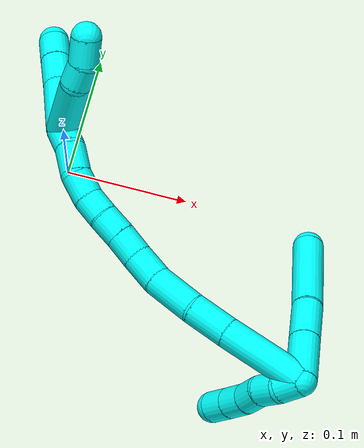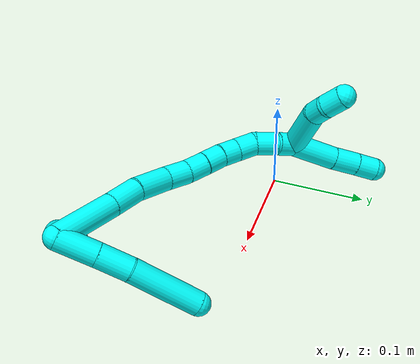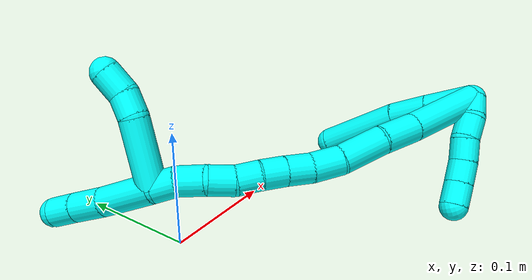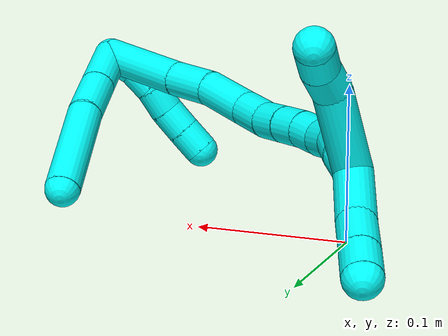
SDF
<sdf version="1.7">
 <world name="default">
  <model name="3">
   <static>0</static>
   <link name="3">
    <collision name="collision-cylinder-e_1_2_8">
     <pose>0.002387 0.000408 -0.020355 -3.12157 0.116737 -2.80226</pose>
     <geometry><cylinder><radius>0.0125</radius><length>0.040996</length></cylinder></geometry>
     <surface>
      <friction><ode><mu>1.16</mu><mu2>1.16</mu2><slip1>0</slip1><slip2>0</slip2></ode></friction>
      <contact><ode><kp>1e+06</kp><kd>1</kd><max_vel>0</max_vel><min_depth>0.001</min_depth></ode></contact>
     </surface>
    </collision>
    <visual name="visual-cylinder-e_1_2_8">
     <pose>0.002387 0.000408 -0.020355 -3.12157 0.116737 -2.80226</pose>
     <geometry><cylinder><radius>0.0125</radius><length>0.040996</length></cylinder></geometry>
     <material><ambient>0.003922 1 0.996078 1</ambient></material>
    </visual>
    <collision name="collision-cylinder-e_2_8_9">
     <pose>0.006902 0.000778 -0.057777 3.13942 0.123992 3.10657</pose>
     <geometry><cylinder><radius>0.0125</radius><length>0.034399</length></cylinder></geometry>
     <surface>
      <friction><ode><mu>1.16</mu><mu2>1.16</mu2><slip1>0</slip1><slip2>0</slip2></ode></friction>
      <contact><ode><kp>1e+06</kp><kd>1</kd><max_vel>0</max_vel><min_depth>0.001</min_depth></ode></contact>
     </surface>
    </collision>
    <visual name="visual-cylinder-e_2_8_9">
     <pose>0.006902 0.000778 -0.057777 3.13942 0.123992 3.10657</pose>
     <geometry><cylinder><radius>0.0125</radius><length>0.034399</length></cylinder></geometry>
     <material><ambient>0.003922 1 0.996078 1</ambient></material>
    </visual>
    <collision name="collision-cylinder-e_3_9_6">
     <pose>0.012011 -0.003843 -0.111743 3.01801 0.080022 1.14859</pose>
     <geometry><cylinder><radius>0.0125</radius><length>0.074605</length></cylinder></geometry>
     <surface>
      <friction><ode><mu>1.16</mu><mu2>1.16</mu2><slip1>0</slip1><slip2>0</slip2></ode></friction>
      <contact><ode><kp>1e+06</kp><kd>1</kd><max_vel>0</max_vel><min_depth>0.001</min_depth></ode></contact>
     </surface>
    </collision>
    <visual name="visual-cylinder-e_3_9_6">
     <pose>0.012011 -0.003843 -0.111743 3.01801 0.080022 1.14859</pose>
     <geometry><cylinder><radius>0.0125</radius><length>0.074605</length></cylinder></geometry>
     <material><ambient>0.003922 1 0.996078 1</ambient></material>
    </visual>
    <collision name="collision-cylinder-e_1_2_10">
     <pose>-0.007925 -0.005985 -0.001174 1.76444 -0.914851 -1.07812</pose>
     <geometry><cylinder><radius>0.0125</radius><length>0.02</length></cylinder></geometry>
     <surface>
      <friction><ode><mu>1.16</mu><mu2>1.16</mu2><slip1>0</slip1><slip2>0</slip2></ode></friction>
      <contact><ode><kp>1e+06</kp><kd>1</kd><max_vel>0</max_vel><min_depth>0.001</min_depth></ode></contact>
     </surface>
    </collision>
    <visual name="visual-cylinder-e_1_2_10">
     <pose>-0.007925 -0.005985 -0.001174 1.76444 -0.914851 -1.07812</pose>
     <geometry><cylinder><radius>0.0125</radius><length>0.02</length></cylinder></geometry>
     <material><ambient>0.003922 1 0.996078 1</ambient></material>
    </visual>
    <collision name="collision-cylinder-e_2_10_11">
     <pose>-0.022371 -0.018484 -0.006227 2.10795 -0.710383 -1.15644</pose>
     <geometry><cylinder><radius>0.0125</radius><length>0.02</length></cylinder></geometry>
     <surface>
      <friction><ode><mu>1.16</mu><mu2>1.16</mu2><slip1>0</slip1><slip2>0</slip2></ode></friction>
      <contact><ode><kp>1e+06</kp><kd>1</kd><max_vel>0</max_vel><min_depth>0.001</min_depth></ode></contact>
     </surface>
    </collision>
    <visual name="visual-cylinder-e_2_10_11">
     <pose>-0.022371 -0.018484 -0.006227 2.10795 -0.710383 -1.15644</pose>
     <geometry><cylinder><radius>0.0125</radius><length>0.02</length></cylinder></geometry>
     <material><ambient>0.003922 1 0.996078 1</ambient></material>
    </visual>
    <collision name="collision-cylinder-e_3_11_12">
     <pose>-0.033545 -0.033371 -0.012974 1.90081 -0.484032 -0.665311</pose>
     <geometry><cylinder><radius>0.0125</radius><length>0.02</length></cylinder></geometry>
     <surface>
      <friction><ode><mu>1.16</mu><mu2>1.16</mu2><slip1>0</slip1><slip2>0</slip2></ode></friction>
      <contact><ode><kp>1e+06</kp><kd>1</kd><max_vel>0</max_vel><min_depth>0.001</min_depth></ode></contact>
     </surface>
    </collision>
    <visual name="visual-cylinder-e_3_11_12">
     <pose>-0.033545 -0.033371 -0.012974 1.90081 -0.484032 -0.665311</pose>
     <geometry><cylinder><radius>0.0125</radius><length>0.02</length></cylinder></geometry>
     <material><ambient>0.003922 1 0.996078 1</ambient></material>
    </visual>
    <collision name="collision-cylinder-e_4_12_13">
     <pose>-0.044187 -0.04893 -0.01938 2.02823 -0.642008 -0.981395</pose>
     <geometry><cylinder><radius>0.0125</radius><length>0.02</length></cylinder></geometry>
     <surface>
      <friction><ode><mu>1.16</mu><mu2>1.16</mu2><slip1>0</slip1><slip2>0</slip2></ode></friction>
      <contact><ode><kp>1e+06</kp><kd>1</kd><max_vel>0</max_vel><min_depth>0.001</min_depth></ode></contact>
     </surface>
    </collision>
    <visual name="visual-cylinder-e_4_12_13">
     <pose>-0.044187 -0.04893 -0.01938 2.02823 -0.642008 -0.981395</pose>
     <geometry><cylinder><radius>0.0125</radius><length>0.02</length></cylinder></geometry>
     <material><ambient>0.003922 1 0.996078 1</ambient></material>
    </visual>
    <collision name="collision-cylinder-e_5_13_5">
     <pose>-0.056344 -0.063124 -0.026497 2.04305 -0.664788 -1.027</pose>
     <geometry><cylinder><radius>0.0125</radius><length>0.02</length></cylinder></geometry>
     <surface>
      <friction><ode><mu>1.16</mu><mu2>1.16</mu2><slip1>0</slip1><slip2>0</slip2></ode></friction>
      <contact><ode><kp>1e+06</kp><kd>1</kd><max_vel>0</max_vel><min_depth>0.001</min_depth></ode></contact>
     </surface>
    </collision>
    <visual name="visual-cylinder-e_5_13_5">
     <pose>-0.056344 -0.063124 -0.026497 2.04305 -0.664788 -1.027</pose>
     <geometry><cylinder><radius>0.0125</radius><length>0.02</length></cylinder></geometry>
     <material><ambient>0.003922 1 0.996078 1</ambient></material>
    </visual>
    <collision name="collision-cylinder-e_1_2_14">
     <pose>-0.027714 0.002523 -0.021484 -3.02467 -0.908044 2.90288</pose>
     <geometry><cylinder><radius>0.0125</radius><length>0.070313</length></cylinder></geometry>
     <surface>
      <friction><ode><mu>1.16</mu><mu2>1.16</mu2><slip1>0</slip1><slip2>0</slip2></ode></friction>
      <contact><ode><kp>1e+06</kp><kd>1</kd><max_vel>0</max_vel><min_depth>0.001</min_depth></ode></contact>
     </surface>
    </collision>
    <visual name="visual-cylinder-e_1_2_14">
     <pose>-0.027714 0.002523 -0.021484 -3.02467 -0.908044 2.90288</pose>
     <geometry><cylinder><radius>0.0125</radius><length>0.070313</length></cylinder></geometry>
     <material><ambient>0.003922 1 0.996078 1</ambient></material>
    </visual>
    <collision name="collision-cylinder-e_2_14_15">
     <pose>-0.068727 0.00728 -0.053161 -2.92589 -0.905466 2.70357</pose>
     <geometry><cylinder><radius>0.0125</radius><length>0.03381</length></cylinder></geometry>
     <surface>
      <friction><ode><mu>1.16</mu><mu2>1.16</mu2><slip1>0</slip1><slip2>0</slip2></ode></friction>
      <contact><ode><kp>1e+06</kp><kd>1</kd><max_vel>0</max_vel><min_depth>0.001</min_depth></ode></contact>
     </surface>
    </collision>
    <visual name="visual-cylinder-e_2_14_15">
     <pose>-0.068727 0.00728 -0.053161 -2.92589 -0.905466 2.70357</pose>
     <geometry><cylinder><radius>0.0125</radius><length>0.03381</length></cylinder></geometry>
     <material><ambient>0.003922 1 0.996078 1</ambient></material>
    </visual>
    <collision name="collision-cylinder-e_3_15_16">
     <pose>-0.095879 0.00997 -0.077401 -3.10911 -0.778197 3.0624</pose>
     <geometry><cylinder><radius>0.0125</radius><length>0.039466</length></cylinder></geometry>
     <surface>
      <friction><ode><mu>1.16</mu><mu2>1.16</mu2><slip1>0</slip1><slip2>0</slip2></ode></friction>
      <contact><ode><kp>1e+06</kp><kd>1</kd><max_vel>0</max_vel><min_depth>0.001</min_depth></ode></contact>
     </surface>
    </collision>
    <visual name="visual-cylinder-e_3_15_16">
     <pose>-0.095879 0.00997 -0.077401 -3.10911 -0.778197 3.0624</pose>
     <geometry><cylinder><radius>0.0125</radius><length>0.039466</length></cylinder></geometry>
     <material><ambient>0.003922 1 0.996078 1</ambient></material>
    </visual>
    <collision name="collision-cylinder-e_4_16_17">
     <pose>-0.11754 0.012718 -0.101588 -2.91936 -0.644174 2.49625</pose>
     <geometry><cylinder><radius>0.0125</radius><length>0.026005</length></cylinder></geometry>
     <surface>
      <friction><ode><mu>1.16</mu><mu2>1.16</mu2><slip1>0</slip1><slip2>0</slip2></ode></friction>
      <contact><ode><kp>1e+06</kp><kd>1</kd><max_vel>0</max_vel><min_depth>0.001</min_depth></ode></contact>
     </surface>
    </collision>
    <visual name="visual-cylinder-e_4_16_17">
     <pose>-0.11754 0.012718 -0.101588 -2.91936 -0.644174 2.49625</pose>
     <geometry><cylinder><radius>0.0125</radius><length>0.026005</length></cylinder></geometry>
     <material><ambient>0.003922 1 0.996078 1</ambient></material>
    </visual>
    <collision name="collision-cylinder-e_5_17_18">
     <pose>-0.132157 0.018653 -0.119685 -2.71218 -0.661297 2.00965</pose>
     <geometry><cylinder><radius>0.0125</radius><length>0.022175</length></cylinder></geometry>
     <surface>
      <friction><ode><mu>1.16</mu><mu2>1.16</mu2><slip1>0</slip1><slip2>0</slip2></ode></friction>
      <contact><ode><kp>1e+06</kp><kd>1</kd><max_vel>0</max_vel><min_depth>0.001</min_depth></ode></contact>
     </surface>
    </collision>
    <visual name="visual-cylinder-e_5_17_18">
     <pose>-0.132157 0.018653 -0.119685 -2.71218 -0.661297 2.00965</pose>
     <geometry><cylinder><radius>0.0125</radius><length>0.022175</length></cylinder></geometry>
     <material><ambient>0.003922 1 0.996078 1</ambient></material>
    </visual>
    <collision name="collision-cylinder-e_6_18_19">
     <pose>-0.145727 0.025309 -0.134867 -2.7465 -0.712295 2.15436</pose>
     <geometry><cylinder><radius>0.0125</radius><length>0.020688</length></cylinder></geometry>
     <surface>
      <friction><ode><mu>1.16</mu><mu2>1.16</mu2><slip1>0</slip1><slip2>0</slip2></ode></friction>
      <contact><ode><kp>1e+06</kp><kd>1</kd><max_vel>0</max_vel><min_depth>0.001</min_depth></ode></contact>
     </surface>
    </collision>
    <visual name="visual-cylinder-e_6_18_19">
     <pose>-0.145727 0.025309 -0.134867 -2.7465 -0.712295 2.15436</pose>
     <geometry><cylinder><radius>0.0125</radius><length>0.020688</length></cylinder></geometry>
     <material><ambient>0.003922 1 0.996078 1</ambient></material>
    </visual>
    <collision name="collision-cylinder-e_7_19_20">
     <pose>-0.158568 0.030595 -0.149899 -2.8584 -0.642072 2.33163</pose>
     <geometry><cylinder><radius>0.0125</radius><length>0.020304</length></cylinder></geometry>
     <surface>
      <friction><ode><mu>1.16</mu><mu2>1.16</mu2><slip1>0</slip1><slip2>0</slip2></ode></friction>
      <contact><ode><kp>1e+06</kp><kd>1</kd><max_vel>0</max_vel><min_depth>0.001</min_depth></ode></contact>
     </surface>
    </collision>
    <visual name="visual-cylinder-e_7_19_20">
     <pose>-0.158568 0.030595 -0.149899 -2.8584 -0.642072 2.33163</pose>
     <geometry><cylinder><radius>0.0125</radius><length>0.020304</length></cylinder></geometry>
     <material><ambient>0.003922 1 0.996078 1</ambient></material>
    </visual>
    <collision name="collision-cylinder-e_8_20_21">
     <pose>-0.169735 0.037515 -0.166209 -2.64133 -0.483402 1.53509</pose>
     <geometry><cylinder><radius>0.0125</radius><length>0.02189</length></cylinder></geometry>
     <surface>
      <friction><ode><mu>1.16</mu><mu2>1.16</mu2><slip1>0</slip1><slip2>0</slip2></ode></friction>
      <contact><ode><kp>1e+06</kp><kd>1</kd><max_vel>0</max_vel><min_depth>0.001</min_depth></ode></contact>
     </surface>
    </collision>
    <visual name="visual-cylinder-e_8_20_21">
     <pose>-0.169735 0.037515 -0.166209 -2.64133 -0.483402 1.53509</pose>
     <geometry><cylinder><radius>0.0125</radius><length>0.02189</length></cylinder></geometry>
     <material><ambient>0.003922 1 0.996078 1</ambient></material>
    </visual>
    <collision name="collision-cylinder-e_9_21_22">
     <pose>-0.177289 0.045627 -0.186315 -2.8515 -0.200971 1.2083</pose>
     <geometry><cylinder><radius>0.0125</radius><length>0.024714</length></cylinder></geometry>
     <surface>
      <friction><ode><mu>1.16</mu><mu2>1.16</mu2><slip1>0</slip1><slip2>0</slip2></ode></friction>
      <contact><ode><kp>1e+06</kp><kd>1</kd><max_vel>0</max_vel><min_depth>0.001</min_depth></ode></contact>
     </surface>
    </collision>
    <visual name="visual-cylinder-e_9_21_22">
     <pose>-0.177289 0.045627 -0.186315 -2.8515 -0.200971 1.2083</pose>
     <geometry><cylinder><radius>0.0125</radius><length>0.024714</length></cylinder></geometry>
     <material><ambient>0.003922 1 0.996078 1</ambient></material>
    </visual>
    <collision name="collision-cylinder-e_10_22_1">
     <pose>-0.183253 0.0499 -0.20759 -3.05804 -0.345845 2.67182</pose>
     <geometry><cylinder><radius>0.0125</radius><length>0.020634</length></cylinder></geometry>
     <surface>
      <friction><ode><mu>1.16</mu><mu2>1.16</mu2><slip1>0</slip1><slip2>0</slip2></ode></friction>
      <contact><ode><kp>1e+06</kp><kd>1</kd><max_vel>0</max_vel><min_depth>0.001</min_depth></ode></contact>
     </surface>
    </collision>
    <visual name="visual-cylinder-e_10_22_1">
     <pose>-0.183253 0.0499 -0.20759 -3.05804 -0.345845 2.67182</pose>
     <geometry><cylinder><radius>0.0125</radius><length>0.020634</length></cylinder></geometry>
     <material><ambient>0.003922 1 0.996078 1</ambient></material>
    </visual>
    <collision name="collision-cylinder-e_1_1_23">
     <pose>-0.187978 0.050866 -0.241685 -3.13521 -0.05022 2.88862</pose>
     <geometry><cylinder><radius>0.0125</radius><length>0.048908</length></cylinder></geometry>
     <surface>
      <friction><ode><mu>1.16</mu><mu2>1.16</mu2><slip1>0</slip1><slip2>0</slip2></ode></friction>
      <contact><ode><kp>1e+06</kp><kd>1</kd><max_vel>0</max_vel><min_depth>0.001</min_depth></ode></contact>
     </surface>
    </collision>
    <visual name="visual-cylinder-e_1_1_23">
     <pose>-0.187978 0.050866 -0.241685 -3.13521 -0.05022 2.88862</pose>
     <geometry><cylinder><radius>0.0125</radius><length>0.048908</length></cylinder></geometry>
     <material><ambient>0.003922 1 0.996078 1</ambient></material>
    </visual>
    <collision name="collision-cylinder-e_2_23_24">
     <pose>-0.190386 0.052042 -0.280038 -3.06849 -0.084325 1.71321</pose>
     <geometry><cylinder><radius>0.0125</radius><length>0.028034</length></cylinder></geometry>
     <surface>
      <friction><ode><mu>1.16</mu><mu2>1.16</mu2><slip1>0</slip1><slip2>0</slip2></ode></friction>
      <contact><ode><kp>1e+06</kp><kd>1</kd><max_vel>0</max_vel><min_depth>0.001</min_depth></ode></contact>
     </surface>
    </collision>
    <visual name="visual-cylinder-e_2_23_24">
     <pose>-0.190386 0.052042 -0.280038 -3.06849 -0.084325 1.71321</pose>
     <geometry><cylinder><radius>0.0125</radius><length>0.028034</length></cylinder></geometry>
     <material><ambient>0.003922 1 0.996078 1</ambient></material>
    </visual>
    <collision name="collision-cylinder-e_3_24_4">
     <pose>-0.192404 0.053675 -0.30545 -3.08834 -0.072686 1.87712</pose>
     <geometry><cylinder><radius>0.0125</radius><length>0.023058</length></cylinder></geometry>
     <surface>
      <friction><ode><mu>1.16</mu><mu2>1.16</mu2><slip1>0</slip1><slip2>0</slip2></ode></friction>
      <contact><ode><kp>1e+06</kp><kd>1</kd><max_vel>0</max_vel><min_depth>0.001</min_depth></ode></contact>
     </surface>
    </collision>
    <visual name="visual-cylinder-e_3_24_4">
     <pose>-0.192404 0.053675 -0.30545 -3.08834 -0.072686 1.87712</pose>
     <geometry><cylinder><radius>0.0125</radius><length>0.023058</length></cylinder></geometry>
     <material><ambient>0.003922 1 0.996078 1</ambient></material>
    </visual>
    <collision name="collision-cylinder-e_1_1_25">
     <pose>-0.182281 0.078892 -0.21444 -1.47096 0.156521 -0.141679</pose>
     <geometry><cylinder><radius>0.0125</radius><length>0.057347</length></cylinder></geometry>
     <surface>
      <friction><ode><mu>1.16</mu><mu2>1.16</mu2><slip1>0</slip1><slip2>0</slip2></ode></friction>
      <contact><ode><kp>1e+06</kp><kd>1</kd><max_vel>0</max_vel><min_depth>0.001</min_depth></ode></contact>
     </surface>
    </collision>
    <visual name="visual-cylinder-e_1_1_25">
     <pose>-0.182281 0.078892 -0.21444 -1.47096 0.156521 -0.141679</pose>
     <geometry><cylinder><radius>0.0125</radius><length>0.057347</length></cylinder></geometry>
     <material><ambient>0.003922 1 0.996078 1</ambient></material>
    </visual>
    <collision name="collision-cylinder-e_2_25_26">
     <pose>-0.17488 0.116519 -0.213353 -1.75253 0.29621 -0.354465</pose>
     <geometry><cylinder><radius>0.0125</radius><length>0.020082</length></cylinder></geometry>
     <surface>
      <friction><ode><mu>1.16</mu><mu2>1.16</mu2><slip1>0</slip1><slip2>0</slip2></ode></friction>
      <contact><ode><kp>1e+06</kp><kd>1</kd><max_vel>0</max_vel><min_depth>0.001</min_depth></ode></contact>
     </surface>
    </collision>
    <visual name="visual-cylinder-e_2_25_26">
     <pose>-0.17488 0.116519 -0.213353 -1.75253 0.29621 -0.354465</pose>
     <geometry><cylinder><radius>0.0125</radius><length>0.020082</length></cylinder></geometry>
     <material><ambient>0.003922 1 0.996078 1</ambient></material>
    </visual>
    <collision name="collision-cylinder-e_3_26_3">
     <pose>-0.171231 0.136339 -0.219474 -1.97073 0.063674 -0.096003</pose>
     <geometry><cylinder><radius>0.0125</radius><length>0.022571</length></cylinder></geometry>
     <surface>
      <friction><ode><mu>1.16</mu><mu2>1.16</mu2><slip1>0</slip1><slip2>0</slip2></ode></friction>
      <contact><ode><kp>1e+06</kp><kd>1</kd><max_vel>0</max_vel><min_depth>0.001</min_depth></ode></contact>
     </surface>
    </collision>
    <visual name="visual-cylinder-e_3_26_3">
     <pose>-0.171231 0.136339 -0.219474 -1.97073 0.063674 -0.096003</pose>
     <geometry><cylinder><radius>0.0125</radius><length>0.022571</length></cylinder></geometry>
     <material><ambient>0.003922 1 0.996078 1</ambient></material>
    </visual>
    <collision name="collision-sphere-3">
     <pose>-0.170513 0.146713 -0.223859 0 -0 0</pose>
     <geometry><sphere><radius>0.0125</radius></sphere></geometry>
     <surface>
      <friction><ode><mu>1.16</mu><mu2>1.16</mu2><slip1>0</slip1><slip2>0</slip2></ode></friction>
      <contact><ode><kp>1e+06</kp><kd>1</kd><max_vel>0</max_vel><min_depth>0.001</min_depth></ode></contact>
     </surface>
    </collision>
    <visual name="visual-sphere-3">
     <pose>-0.170513 0.146713 -0.223859 0 -0 0</pose>
     <geometry><sphere><radius>0.0125</radius></sphere></geometry>
     <material><ambient>0.003922 1 0.996078 1</ambient></material>
    </visual>
    <collision name="collision-sphere-26">
     <pose>-0.171949 0.125965 -0.215088 0 -0 0</pose>
     <geometry><sphere><radius>0.0125</radius></sphere></geometry>
     <surface>
      <friction><ode><mu>1.16</mu><mu2>1.16</mu2><slip1>0</slip1><slip2>0</slip2></ode></friction>
      <contact><ode><kp>1e+06</kp><kd>1</kd><max_vel>0</max_vel><min_depth>0.001</min_depth></ode></contact>
     </surface>
    </collision>
    <visual name="visual-sphere-26">
     <pose>-0.171949 0.125965 -0.215088 0 -0 0</pose>
     <geometry><sphere><radius>0.0125</radius></sphere></geometry>
     <material><ambient>0.003922 1 0.996078 1</ambient></material>
    </visual>
    <collision name="collision-sphere-25">
     <pose>-0.177811 0.107074 -0.211617 0 -0 0</pose>
     <geometry><sphere><radius>0.0125</radius></sphere></geometry>
     <surface>
      <friction><ode><mu>1.16</mu><mu2>1.16</mu2><slip1>0</slip1><slip2>0</slip2></ode></friction>
      <contact><ode><kp>1e+06</kp><kd>1</kd><max_vel>0</max_vel><min_depth>0.001</min_depth></ode></contact>
     </surface>
    </collision>
    <visual name="visual-sphere-25">
     <pose>-0.177811 0.107074 -0.211617 0 -0 0</pose>
     <geometry><sphere><radius>0.0125</radius></sphere></geometry>
     <material><ambient>0.003922 1 0.996078 1</ambient></material>
    </visual>
    <collision name="collision-sphere-4">
     <pose>-0.193241 0.054287 -0.316932 0 -0 0</pose>
     <geometry><sphere><radius>0.0125</radius></sphere></geometry>
     <surface>
      <friction><ode><mu>1.16</mu><mu2>1.16</mu2><slip1>0</slip1><slip2>0</slip2></ode></friction>
      <contact><ode><kp>1e+06</kp><kd>1</kd><max_vel>0</max_vel><min_depth>0.001</min_depth></ode></contact>
     </surface>
    </collision>
    <visual name="visual-sphere-4">
     <pose>-0.193241 0.054287 -0.316932 0 -0 0</pose>
     <geometry><sphere><radius>0.0125</radius></sphere></geometry>
     <material><ambient>0.003922 1 0.996078 1</ambient></material>
    </visual>
    <collision name="collision-sphere-24">
     <pose>-0.191567 0.053063 -0.293968 0 -0 0</pose>
     <geometry><sphere><radius>0.0125</radius></sphere></geometry>
     <surface>
      <friction><ode><mu>1.16</mu><mu2>1.16</mu2><slip1>0</slip1><slip2>0</slip2></ode></friction>
      <contact><ode><kp>1e+06</kp><kd>1</kd><max_vel>0</max_vel><min_depth>0.001</min_depth></ode></contact>
     </surface>
    </collision>
    <visual name="visual-sphere-24">
     <pose>-0.191567 0.053063 -0.293968 0 -0 0</pose>
     <geometry><sphere><radius>0.0125</radius></sphere></geometry>
     <material><ambient>0.003922 1 0.996078 1</ambient></material>
    </visual>
    <collision name="collision-sphere-23">
     <pose>-0.189205 0.051022 -0.266108 0 -0 0</pose>
     <geometry><sphere><radius>0.0125</radius></sphere></geometry>
     <surface>
      <friction><ode><mu>1.16</mu><mu2>1.16</mu2><slip1>0</slip1><slip2>0</slip2></ode></friction>
      <contact><ode><kp>1e+06</kp><kd>1</kd><max_vel>0</max_vel><min_depth>0.001</min_depth></ode></contact>
     </surface>
    </collision>
    <visual name="visual-sphere-23">
     <pose>-0.189205 0.051022 -0.266108 0 -0 0</pose>
     <geometry><sphere><radius>0.0125</radius></sphere></geometry>
     <material><ambient>0.003922 1 0.996078 1</ambient></material>
    </visual>
    <collision name="collision-sphere-1">
     <pose>-0.18675 0.05071 -0.217263 0 -0 0</pose>
     <geometry><sphere><radius>0.0125</radius></sphere></geometry>
     <surface>
      <friction><ode><mu>1.16</mu><mu2>1.16</mu2><slip1>0</slip1><slip2>0</slip2></ode></friction>
      <contact><ode><kp>1e+06</kp><kd>1</kd><max_vel>0</max_vel><min_depth>0.001</min_depth></ode></contact>
     </surface>
    </collision>
    <visual name="visual-sphere-1">
     <pose>-0.18675 0.05071 -0.217263 0 -0 0</pose>
     <geometry><sphere><radius>0.0125</radius></sphere></geometry>
     <material><ambient>0.003922 1 0.996078 1</ambient></material>
    </visual>
    <collision name="collision-sphere-22">
     <pose>-0.179755 0.04909 -0.197918 0 -0 0</pose>
     <geometry><sphere><radius>0.0125</radius></sphere></geometry>
     <surface>
      <friction><ode><mu>1.16</mu><mu2>1.16</mu2><slip1>0</slip1><slip2>0</slip2></ode></friction>
      <contact><ode><kp>1e+06</kp><kd>1</kd><max_vel>0</max_vel><min_depth>0.001</min_depth></ode></contact>
     </surface>
    </collision>
    <visual name="visual-sphere-22">
     <pose>-0.179755 0.04909 -0.197918 0 -0 0</pose>
     <geometry><sphere><radius>0.0125</radius></sphere></geometry>
     <material><ambient>0.003922 1 0.996078 1</ambient></material>
    </visual>
    <collision name="collision-sphere-21">
     <pose>-0.174822 0.042163 -0.174713 0 -0 0</pose>
     <geometry><sphere><radius>0.0125</radius></sphere></geometry>
     <surface>
      <friction><ode><mu>1.16</mu><mu2>1.16</mu2><slip1>0</slip1><slip2>0</slip2></ode></friction>
      <contact><ode><kp>1e+06</kp><kd>1</kd><max_vel>0</max_vel><min_depth>0.001</min_depth></ode></contact>
     </surface>
    </collision>
    <visual name="visual-sphere-21">
     <pose>-0.174822 0.042163 -0.174713 0 -0 0</pose>
     <geometry><sphere><radius>0.0125</radius></sphere></geometry>
     <material><ambient>0.003922 1 0.996078 1</ambient></material>
    </visual>
    <collision name="collision-sphere-11">
     <pose>-0.028892 -0.024997 -0.010106 0 -0 0</pose>
     <geometry><sphere><radius>0.0125</radius></sphere></geometry>
     <surface>
      <friction><ode><mu>1.16</mu><mu2>1.16</mu2><slip1>0</slip1><slip2>0</slip2></ode></friction>
      <contact><ode><kp>1e+06</kp><kd>1</kd><max_vel>0</max_vel><min_depth>0.001</min_depth></ode></contact>
     </surface>
    </collision>
    <visual name="visual-sphere-11">
     <pose>-0.028892 -0.024997 -0.010106 0 -0 0</pose>
     <geometry><sphere><radius>0.0125</radius></sphere></geometry>
     <material><ambient>0.003922 1 0.996078 1</ambient></material>
    </visual>
    <collision name="collision-sphere-10">
     <pose>-0.015849 -0.01197 -0.002347 0 -0 0</pose>
     <geometry><sphere><radius>0.0125</radius></sphere></geometry>
     <surface>
      <friction><ode><mu>1.16</mu><mu2>1.16</mu2><slip1>0</slip1><slip2>0</slip2></ode></friction>
      <contact><ode><kp>1e+06</kp><kd>1</kd><max_vel>0</max_vel><min_depth>0.001</min_depth></ode></contact>
     </surface>
    </collision>
    <visual name="visual-sphere-10">
     <pose>-0.015849 -0.01197 -0.002347 0 -0 0</pose>
     <geometry><sphere><radius>0.0125</radius></sphere></geometry>
     <material><ambient>0.003922 1 0.996078 1</ambient></material>
    </visual>
    <collision name="collision-sphere-6">
     <pose>0.014993 -0.008426 -0.148643 0 -0 0</pose>
     <geometry><sphere><radius>0.0125</radius></sphere></geometry>
     <surface>
      <friction><ode><mu>1.16</mu><mu2>1.16</mu2><slip1>0</slip1><slip2>0</slip2></ode></friction>
      <contact><ode><kp>1e+06</kp><kd>1</kd><max_vel>0</max_vel><min_depth>0.001</min_depth></ode></contact>
     </surface>
    </collision>
    <visual name="visual-sphere-6">
     <pose>0.014993 -0.008426 -0.148643 0 -0 0</pose>
     <geometry><sphere><radius>0.0125</radius></sphere></geometry>
     <material><ambient>0.003922 1 0.996078 1</ambient></material>
    </visual>
    <collision name="collision-sphere-9">
     <pose>0.009029 0.000741 -0.074844 0 -0 0</pose>
     <geometry><sphere><radius>0.0125</radius></sphere></geometry>
     <surface>
      <friction><ode><mu>1.16</mu><mu2>1.16</mu2><slip1>0</slip1><slip2>0</slip2></ode></friction>
      <contact><ode><kp>1e+06</kp><kd>1</kd><max_vel>0</max_vel><min_depth>0.001</min_depth></ode></contact>
     </surface>
    </collision>
    <visual name="visual-sphere-9">
     <pose>0.009029 0.000741 -0.074844 0 -0 0</pose>
     <geometry><sphere><radius>0.0125</radius></sphere></geometry>
     <material><ambient>0.003922 1 0.996078 1</ambient></material>
    </visual>
    <collision name="collision-sphere-2">
     <geometry><sphere><radius>0.0125</radius></sphere></geometry>
     <surface>
      <friction><ode><mu>1.16</mu><mu2>1.16</mu2><slip1>0</slip1><slip2>0</slip2></ode></friction>
      <contact><ode><kp>1e+06</kp><kd>1</kd><max_vel>0</max_vel><min_depth>0.001</min_depth></ode></contact>
     </surface>
    </collision>
    <visual name="visual-sphere-2">
     <geometry><sphere><radius>0.0125</radius></sphere></geometry>
     <material><ambient>0.003922 1 0.996078 1</ambient></material>
    </visual>
    <collision name="collision-sphere-19">
     <pose>-0.152488 0.028323 -0.142093 0 -0 0</pose>
     <geometry><sphere><radius>0.0125</radius></sphere></geometry>
     <surface>
      <friction><ode><mu>1.16</mu><mu2>1.16</mu2><slip1>0</slip1><slip2>0</slip2></ode></friction>
      <contact><ode><kp>1e+06</kp><kd>1</kd><max_vel>0</max_vel><min_depth>0.001</min_depth></ode></contact>
     </surface>
    </collision>
    <visual name="visual-sphere-19">
     <pose>-0.152488 0.028323 -0.142093 0 -0 0</pose>
     <geometry><sphere><radius>0.0125</radius></sphere></geometry>
     <material><ambient>0.003922 1 0.996078 1</ambient></material>
    </visual>
    <collision name="collision-sphere-8">
     <pose>0.004775 0.000815 -0.040709 0 -0 0</pose>
     <geometry><sphere><radius>0.0125</radius></sphere></geometry>
     <surface>
      <friction><ode><mu>1.16</mu><mu2>1.16</mu2><slip1>0</slip1><slip2>0</slip2></ode></friction>
      <contact><ode><kp>1e+06</kp><kd>1</kd><max_vel>0</max_vel><min_depth>0.001</min_depth></ode></contact>
     </surface>
    </collision>
    <visual name="visual-sphere-8">
     <pose>0.004775 0.000815 -0.040709 0 -0 0</pose>
     <geometry><sphere><radius>0.0125</radius></sphere></geometry>
     <material><ambient>0.003922 1 0.996078 1</ambient></material>
    </visual>
    <collision name="collision-sphere-12">
     <pose>-0.038199 -0.041744 -0.015842 0 -0 0</pose>
     <geometry><sphere><radius>0.0125</radius></sphere></geometry>
     <surface>
      <friction><ode><mu>1.16</mu><mu2>1.16</mu2><slip1>0</slip1><slip2>0</slip2></ode></friction>
      <contact><ode><kp>1e+06</kp><kd>1</kd><max_vel>0</max_vel><min_depth>0.001</min_depth></ode></contact>
     </surface>
    </collision>
    <visual name="visual-sphere-12">
     <pose>-0.038199 -0.041744 -0.015842 0 -0 0</pose>
     <geometry><sphere><radius>0.0125</radius></sphere></geometry>
     <material><ambient>0.003922 1 0.996078 1</ambient></material>
    </visual>
    <collision name="collision-sphere-13">
     <pose>-0.050175 -0.056115 -0.022917 0 -0 0</pose>
     <geometry><sphere><radius>0.0125</radius></sphere></geometry>
     <surface>
      <friction><ode><mu>1.16</mu><mu2>1.16</mu2><slip1>0</slip1><slip2>0</slip2></ode></friction>
      <contact><ode><kp>1e+06</kp><kd>1</kd><max_vel>0</max_vel><min_depth>0.001</min_depth></ode></contact>
     </surface>
    </collision>
    <visual name="visual-sphere-13">
     <pose>-0.050175 -0.056115 -0.022917 0 -0 0</pose>
     <geometry><sphere><radius>0.0125</radius></sphere></geometry>
     <material><ambient>0.003922 1 0.996078 1</ambient></material>
    </visual>
    <collision name="collision-sphere-5">
     <pose>-0.062513 -0.070133 -0.030077 0 -0 0</pose>
     <geometry><sphere><radius>0.0125</radius></sphere></geometry>
     <surface>
      <friction><ode><mu>1.16</mu><mu2>1.16</mu2><slip1>0</slip1><slip2>0</slip2></ode></friction>
      <contact><ode><kp>1e+06</kp><kd>1</kd><max_vel>0</max_vel><min_depth>0.001</min_depth></ode></contact>
     </surface>
    </collision>
    <visual name="visual-sphere-5">
     <pose>-0.062513 -0.070133 -0.030077 0 -0 0</pose>
     <geometry><sphere><radius>0.0125</radius></sphere></geometry>
     <material><ambient>0.003922 1 0.996078 1</ambient></material>
    </visual>
    <collision name="collision-sphere-14">
     <pose>-0.055428 0.005047 -0.042967 0 -0 0</pose>
     <geometry><sphere><radius>0.0125</radius></sphere></geometry>
     <surface>
      <friction><ode><mu>1.16</mu><mu2>1.16</mu2><slip1>0</slip1><slip2>0</slip2></ode></friction>
      <contact><ode><kp>1e+06</kp><kd>1</kd><max_vel>0</max_vel><min_depth>0.001</min_depth></ode></contact>
     </surface>
    </collision>
    <visual name="visual-sphere-14">
     <pose>-0.055428 0.005047 -0.042967 0 -0 0</pose>
     <geometry><sphere><radius>0.0125</radius></sphere></geometry>
     <material><ambient>0.003922 1 0.996078 1</ambient></material>
    </visual>
    <collision name="collision-sphere-15">
     <pose>-0.082026 0.009514 -0.063355 0 -0 0</pose>
     <geometry><sphere><radius>0.0125</radius></sphere></geometry>
     <surface>
      <friction><ode><mu>1.16</mu><mu2>1.16</mu2><slip1>0</slip1><slip2>0</slip2></ode></friction>
      <contact><ode><kp>1e+06</kp><kd>1</kd><max_vel>0</max_vel><min_depth>0.001</min_depth></ode></contact>
     </surface>
    </collision>
    <visual name="visual-sphere-15">
     <pose>-0.082026 0.009514 -0.063355 0 -0 0</pose>
     <geometry><sphere><radius>0.0125</radius></sphere></geometry>
     <material><ambient>0.003922 1 0.996078 1</ambient></material>
    </visual>
    <collision name="collision-sphere-16">
     <pose>-0.109731 0.010427 -0.091447 0 -0 0</pose>
     <geometry><sphere><radius>0.0125</radius></sphere></geometry>
     <surface>
      <friction><ode><mu>1.16</mu><mu2>1.16</mu2><slip1>0</slip1><slip2>0</slip2></ode></friction>
      <contact><ode><kp>1e+06</kp><kd>1</kd><max_vel>0</max_vel><min_depth>0.001</min_depth></ode></contact>
     </surface>
    </collision>
    <visual name="visual-sphere-16">
     <pose>-0.109731 0.010427 -0.091447 0 -0 0</pose>
     <geometry><sphere><radius>0.0125</radius></sphere></geometry>
     <material><ambient>0.003922 1 0.996078 1</ambient></material>
    </visual>
    <collision name="collision-sphere-17">
     <pose>-0.125348 0.01501 -0.111729 0 -0 0</pose>
     <geometry><sphere><radius>0.0125</radius></sphere></geometry>
     <surface>
      <friction><ode><mu>1.16</mu><mu2>1.16</mu2><slip1>0</slip1><slip2>0</slip2></ode></friction>
      <contact><ode><kp>1e+06</kp><kd>1</kd><max_vel>0</max_vel><min_depth>0.001</min_depth></ode></contact>
     </surface>
    </collision>
    <visual name="visual-sphere-17">
     <pose>-0.125348 0.01501 -0.111729 0 -0 0</pose>
     <geometry><sphere><radius>0.0125</radius></sphere></geometry>
     <material><ambient>0.003922 1 0.996078 1</ambient></material>
    </visual>
    <collision name="collision-sphere-18">
     <pose>-0.138967 0.022296 -0.127641 0 -0 0</pose>
     <geometry><sphere><radius>0.0125</radius></sphere></geometry>
     <surface>
      <friction><ode><mu>1.16</mu><mu2>1.16</mu2><slip1>0</slip1><slip2>0</slip2></ode></friction>
      <contact><ode><kp>1e+06</kp><kd>1</kd><max_vel>0</max_vel><min_depth>0.001</min_depth></ode></contact>
     </surface>
    </collision>
    <visual name="visual-sphere-18">
     <pose>-0.138967 0.022296 -0.127641 0 -0 0</pose>
     <geometry><sphere><radius>0.0125</radius></sphere></geometry>
     <material><ambient>0.003922 1 0.996078 1</ambient></material>
    </visual>
    <collision name="collision-sphere-20">
     <pose>-0.164647 0.032866 -0.157706 0 -0 0</pose>
     <geometry><sphere><radius>0.0125</radius></sphere></geometry>
     <surface>
      <friction><ode><mu>1.16</mu><mu2>1.16</mu2><slip1>0</slip1><slip2>0</slip2></ode></friction>
      <contact><ode><kp>1e+06</kp><kd>1</kd><max_vel>0</max_vel><min_depth>0.001</min_depth></ode></contact>
     </surface>
    </collision>
    <visual name="visual-sphere-20">
     <pose>-0.164647 0.032866 -0.157706 0 -0 0</pose>
     <geometry><sphere><radius>0.0125</radius></sphere></geometry>
     <material><ambient>0.003922 1 0.996078 1</ambient></material>
    </visual>
    <inertial>
     <pose>-0.09468 0.022893 -0.121003 0 -0 0</pose>
     <mass>0.75</mass>
     <inertia><ixx>1.4e-05</ixx><ixy>0</ixy><ixz>0</ixz><iyy>0.000113</iyy><iyz>0</iyz><izz>-2e-05</izz></inertia>
    </inertial>
   </link>
   <pose>0.230618 -0.144621 0.083222 1.13205 0.070784 0.260183</pose>
  </model>
 </world>
</sdf>
